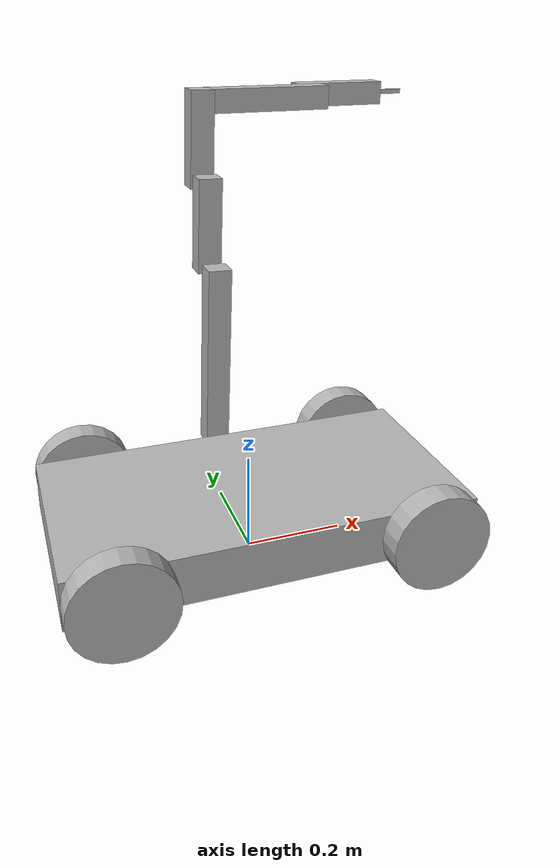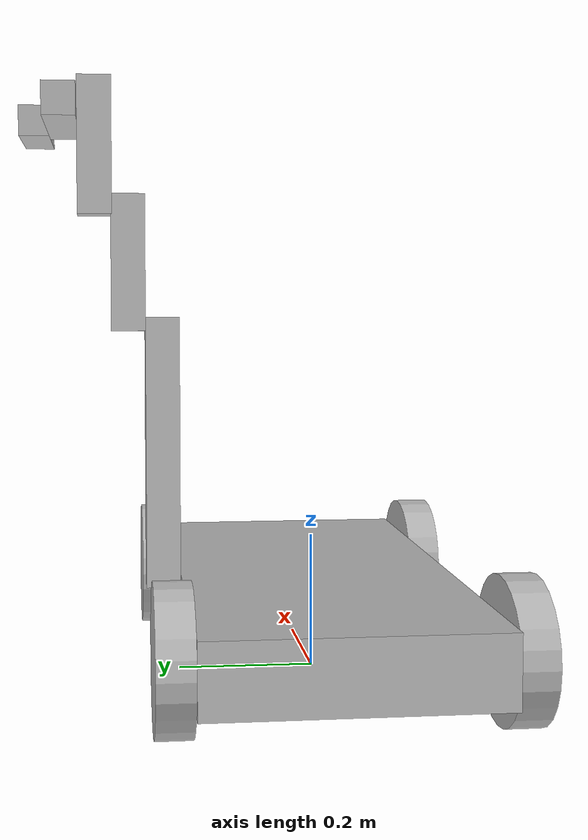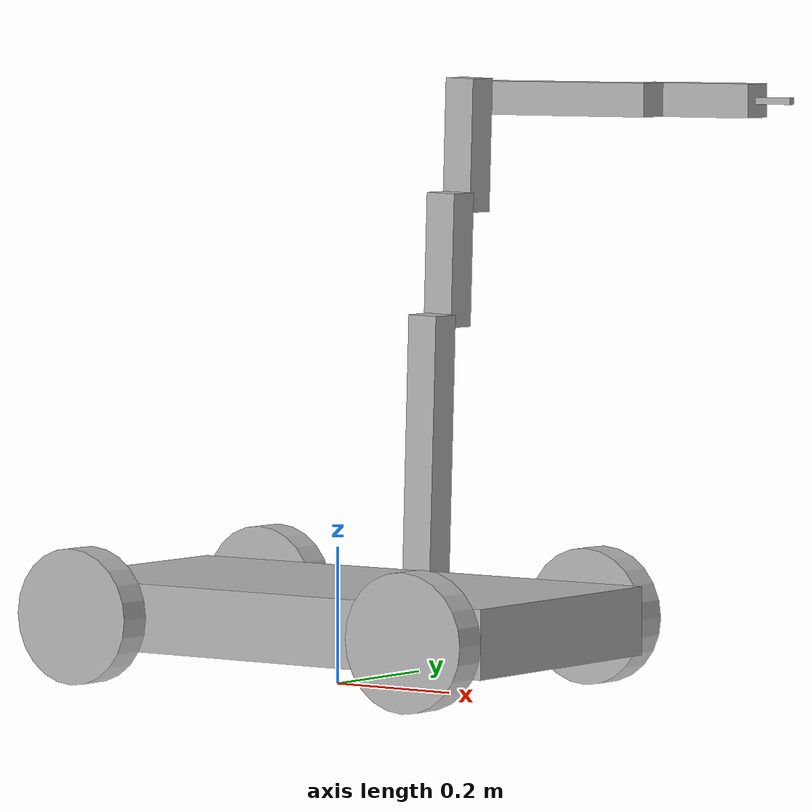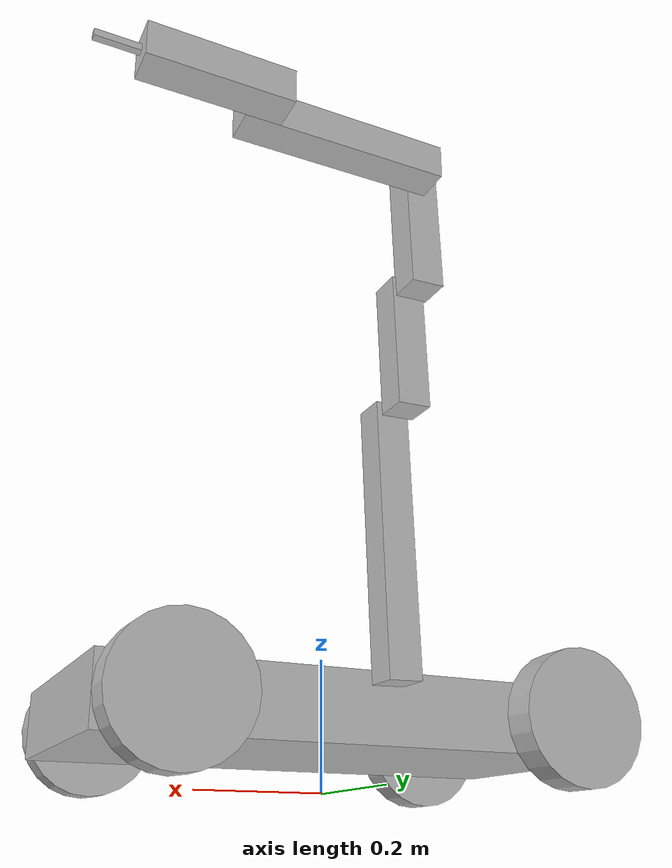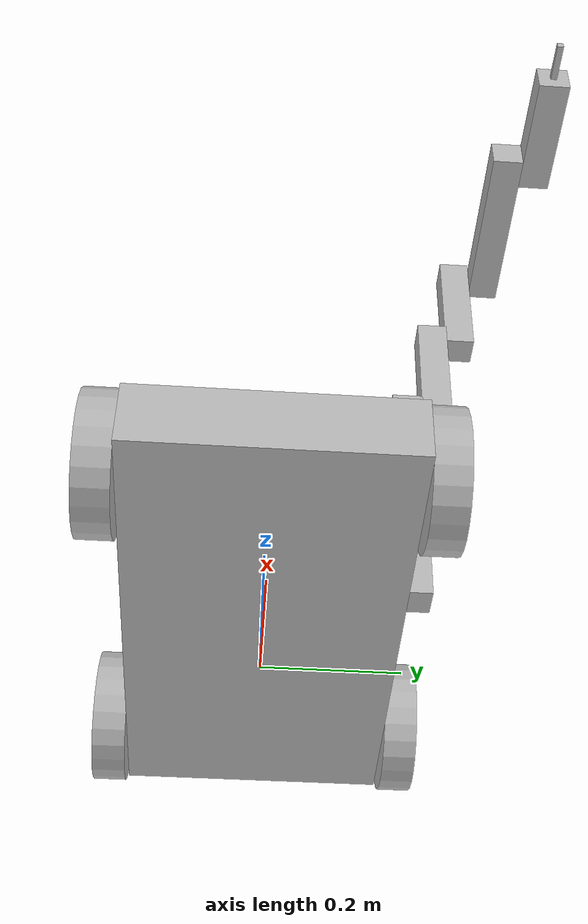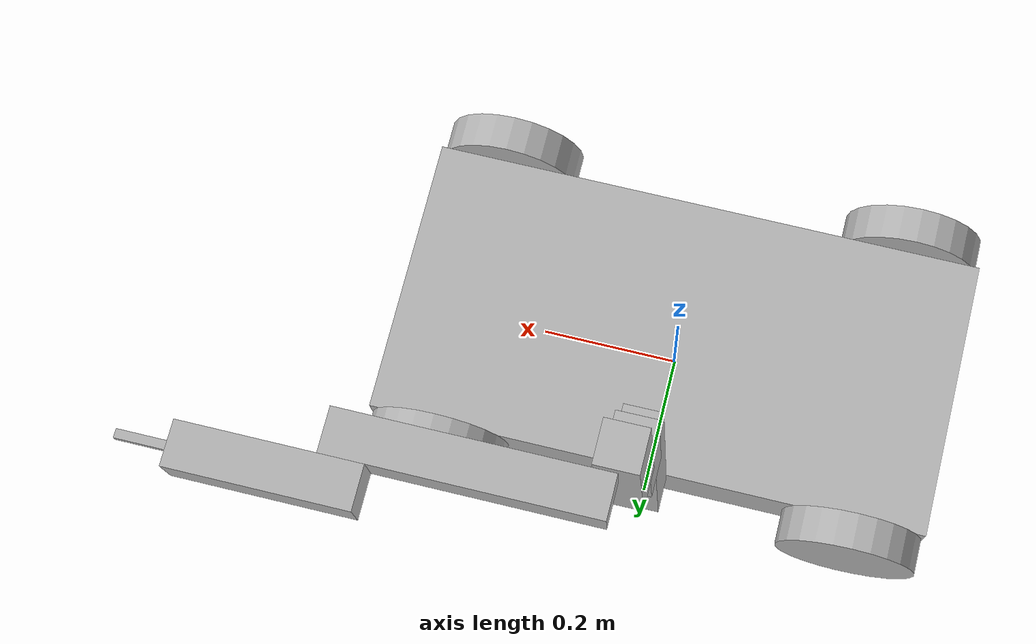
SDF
<?xml version='1.0'?>
<sdf version='1.4'>
  <model name="my_robot">

   <static>false</static>
    <link name='chassis'>
            <pose>0 0 .1 0 0 0</pose>

            <collision name='collision'>
              <geometry>
                <box>
                  <size>.8 .4 .1</size>
                </box>
              </geometry>
            </collision>

            <visual name='visual'>
              <geometry>
                <box>
                  <size>.8 .4 .1</size>
                </box>
              </geometry>
            </visual>
          </link>

    <link name="left_wheel">
        <pose>0.30 0.225 0.1 0 1.5707 1.5707</pose>
        <collision name="collision">
          <geometry>
            <cylinder>
              <radius>.1</radius>
              <length>.05</length>
            </cylinder>
          </geometry>
        </collision>
        <visual name="visual">
          <geometry>
            <cylinder>
              <radius>.1</radius>
              <length>.05</length>
            </cylinder>
          </geometry>
        </visual>
      </link>

   <link name="right_wheel">
        <pose>0.30 -0.225 0.1 0 1.5707 1.5707</pose>
        <collision name="collision">
          <geometry>
            <cylinder>
              <radius>.1</radius>
              <length>.05</length>
            </cylinder>
          </geometry>
        </collision>
        <visual name="visual">
          <geometry>
            <cylinder>
              <radius>.1</radius>
              <length>.05</length>
            </cylinder>
          </geometry>
        </visual>
      </link>

  <link name="right_back_wheel">
        <pose>-0.30 -0.225 0.1 0 1.5707 1.5707</pose>
        <collision name="collision">
          <geometry>
            <cylinder>
              <radius>.1</radius>
              <length>.05</length>
            </cylinder>
          </geometry>
        </collision>
        <visual name="visual">
          <geometry>
            <cylinder>
              <radius>.1</radius>
              <length>.05</length>
            </cylinder>
          </geometry>
        </visual>
      </link>

  <link name="left_back_wheel">
        <pose>-0.30 0.225 0.1 0 1.5707 1.5707</pose>
        <collision name="collision">
          <geometry>
            <cylinder>
              <radius>.1</radius>
              <length>.05</length>
            </cylinder>
          </geometry>
        </collision>
        <visual name="visual">
          <geometry>
            <cylinder>
              <radius>.1</radius>
              <length>.05</length>
            </cylinder>
          </geometry>
        </visual>
      </link>

     <joint type="revolute" name="left_wheel_hinge">
        <pose>0 0 -0.03 0 0 0</pose>
        <child>left_wheel</child>
        <parent>chassis</parent>
        <axis>
          <xyz>0 1 0</xyz>
        </axis>
      </joint>

      <joint type="revolute" name="right_wheel_hinge">
        <pose>0 0 0.03 0 0 0</pose>
        <child>right_wheel</child>
        <parent>chassis</parent>
        <axis>
          <xyz>0 1 0</xyz>
        </axis>
      </joint>

      <joint type="revolute" name="left_back_wheel_hinge">
        <pose>0 0 -0.03 0 0 0</pose>
        <child>left_back_wheel</child>
        <parent>chassis</parent>
        <axis>
          <xyz>0 1 0</xyz>
        </axis>
      </joint>

      <joint type="revolute" name="right_back_wheel_hinge">
        <pose>0 0 0.03 0 0 0</pose>
        <child>right_back_wheel</child>
        <parent>chassis</parent>
        <axis>
          <xyz>0 1 0</xyz>
        </axis>
      </joint>

      <link name='arm1'>
            <pose>0 0.225 0.33 0 1.6 0</pose>

            <collision name='collision'>
              <geometry>
                <box>
                  <size>.4 .05 .05</size>
                </box>
              </geometry>
            </collision>

            <visual name='visual'>
              <geometry>
                <box>
                  <size>.4 .05 .05</size>
                </box>
              </geometry>
            </visual>
          </link>

      <joint type="revolute" name="arm1_hinge">
         <pose>0.2 -0.02 0 0 0 0</pose>
         <child>arm1</child>
         <parent>chassis</parent>
         <axis>
          <xyz>0 1 0</xyz>
         </axis>
      </joint>

      <link name='arm2'>
            <pose>0 0.275 0.61 0 1.6 0</pose>

            <collision name='collision'>
              <geometry>
                <box>
                  <size>.2 .05 .05</size>
                </box>
              </geometry>
            </collision>

            <visual name='visual'>
              <geometry>
                <box>
                  <size>.2 .05 .05</size>
                </box>
              </geometry>
            </visual>
          </link>

      <joint type="revolute" name="arm2_hinge">
         <pose>0.1 -0.02 0 0 0 0</pose>
         <child>arm2</child>
         <parent>chassis</parent>
         <axis>
          <xyz>0 1 0</xyz>
         </axis>
      </joint>

      <link name='arm3'>
            <pose>0 0.323 0.78 0 1.6 0</pose>

            <collision name='collision'>
              <geometry>
                <box>
                  <size>.2 .05 .05</size>
                </box>
              </geometry>
            </collision>

            <visual name='visual'>
              <geometry>
                <box>
                  <size>.2 .05 .05</size>
                </box>
              </geometry>
            </visual>
          </link>

       <joint type="revolute" name="arm3_hinge">
         <pose>0.1 -0.02 0 0 0 0</pose>
         <child>arm3</child>
         <parent>chassis</parent>
         <axis>
          <xyz>0 1 0</xyz>
         </axis>
      </joint>

       <link name='arm4'>
            <pose>0.15 0.375 0.85 0 0 0</pose>

            <collision name='collision'>
              <geometry>
                <box>
                  <size>.3 .05 .05</size>
                </box>
              </geometry>
            </collision>

            <visual name='visual'>
              <geometry>
                <box>
                  <size>.3 .05 .05</size>
                </box>
              </geometry>
            </visual>
          </link>

       <joint type="revolute" name="arm4_hinge">
         <pose>-0.15 0 0 0 0 0</pose>
         <child>arm4</child>
         <parent>chassis</parent>
         <axis>
          <xyz>0 1 0</xyz>
         </axis>
      </joint>

      <link name='arm5'>
            <pose>0.35 0.425 0.85 0 0 0</pose>

            <collision name='collision'>
              <geometry>
                <box>
                  <size>.2 .05 .05</size>
                </box>
              </geometry>
            </collision>

            <visual name='visual'>
              <geometry>
                <box>
                  <size>.2 .05 .05</size>
                </box>
              </geometry>
            </visual>
          </link>

       <joint type="revolute" name="arm5_hinge">
         <pose>-0.1 0 0 0 0 0</pose>
         <child>arm5</child>
         <parent>chassis</parent>
         <axis>
          <xyz>0 1 0</xyz>
         </axis>
      </joint>

        <link name='endeffector'>
            <pose>0.480 0.425 0.85 0 0 0</pose>

            <collision name='collision'>
              <geometry>
                <box>
                  <size>.06 .01 .01</size>
                </box>
              </geometry>
            </collision>

            <visual name='visual'>
              <geometry>
                <box>
                  <size>.06 .01 .01</size>
                </box>
              </geometry>
            </visual>
          </link>

         <joint type="fixed" name="endeffector_hinge">
         <pose> -0.03 0 0 0 0 0</pose>
         <child>endeffector</child>
         <parent>chassis</parent>
         <axis>
          <xyz>0 1 0</xyz>
         </axis>
      </joint>

  </model>
</sdf>
